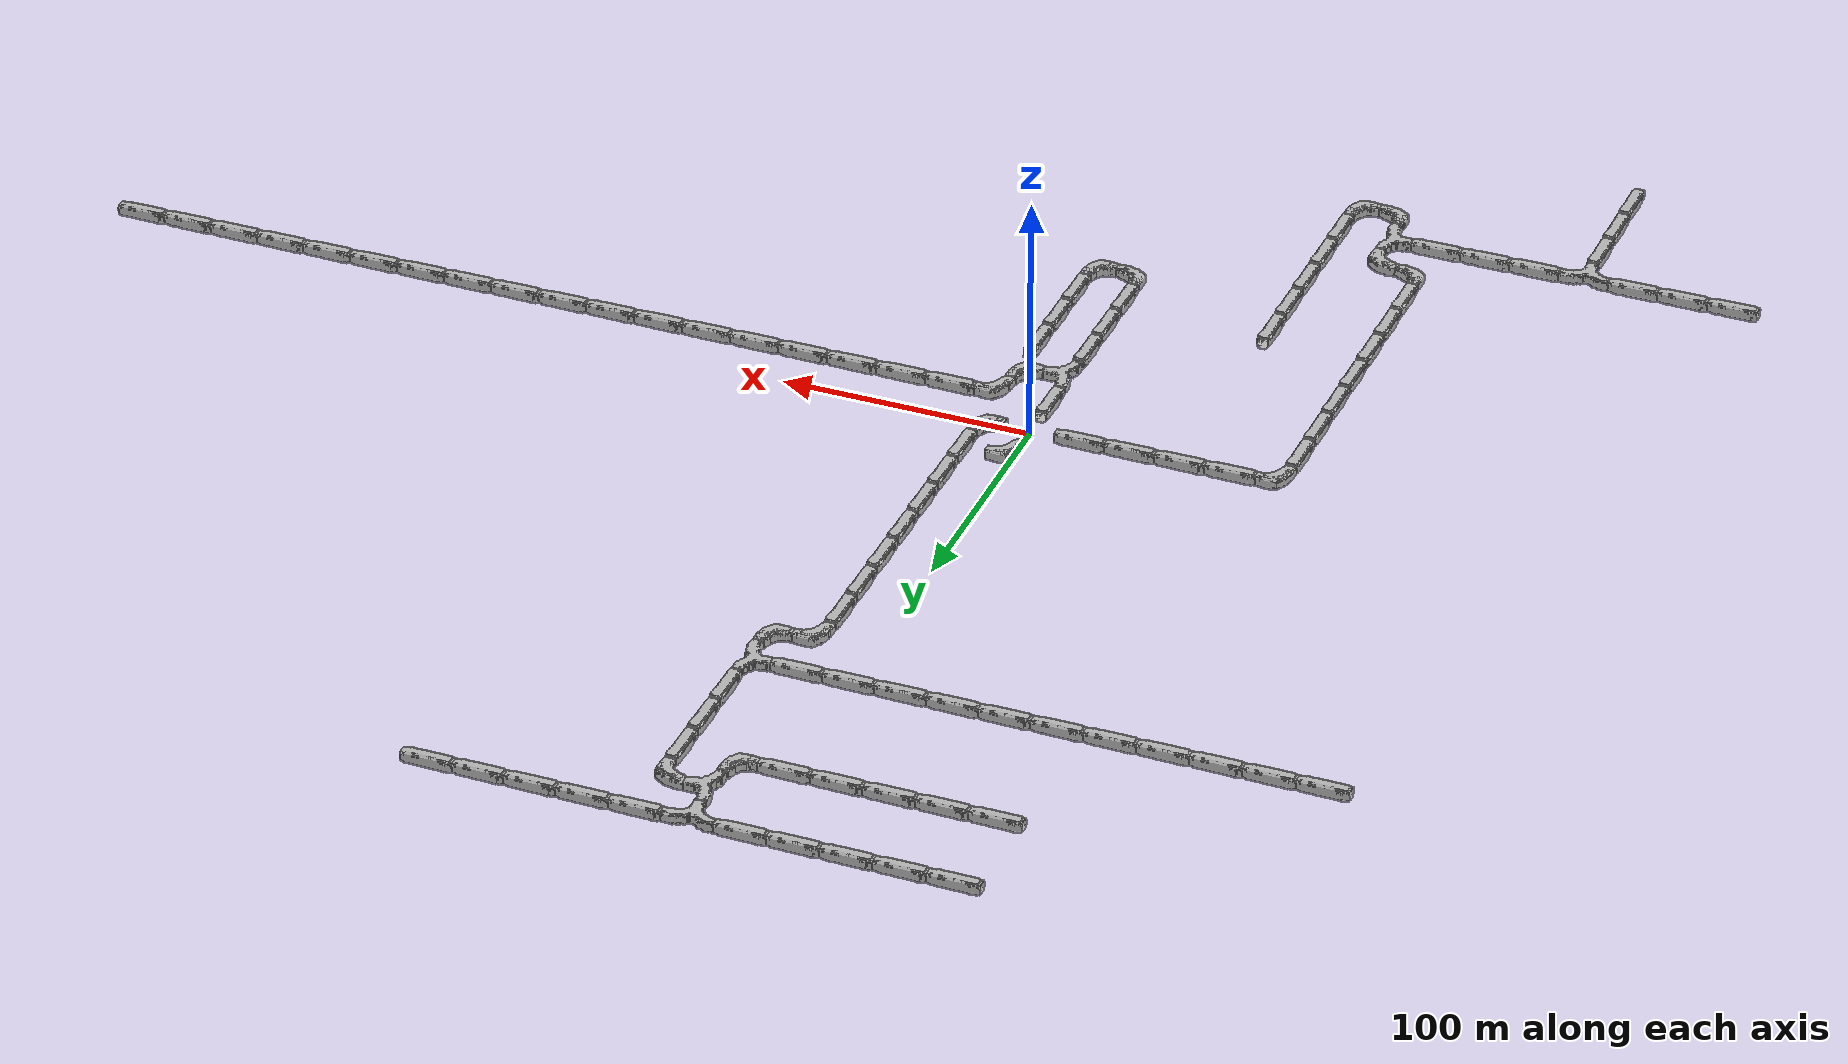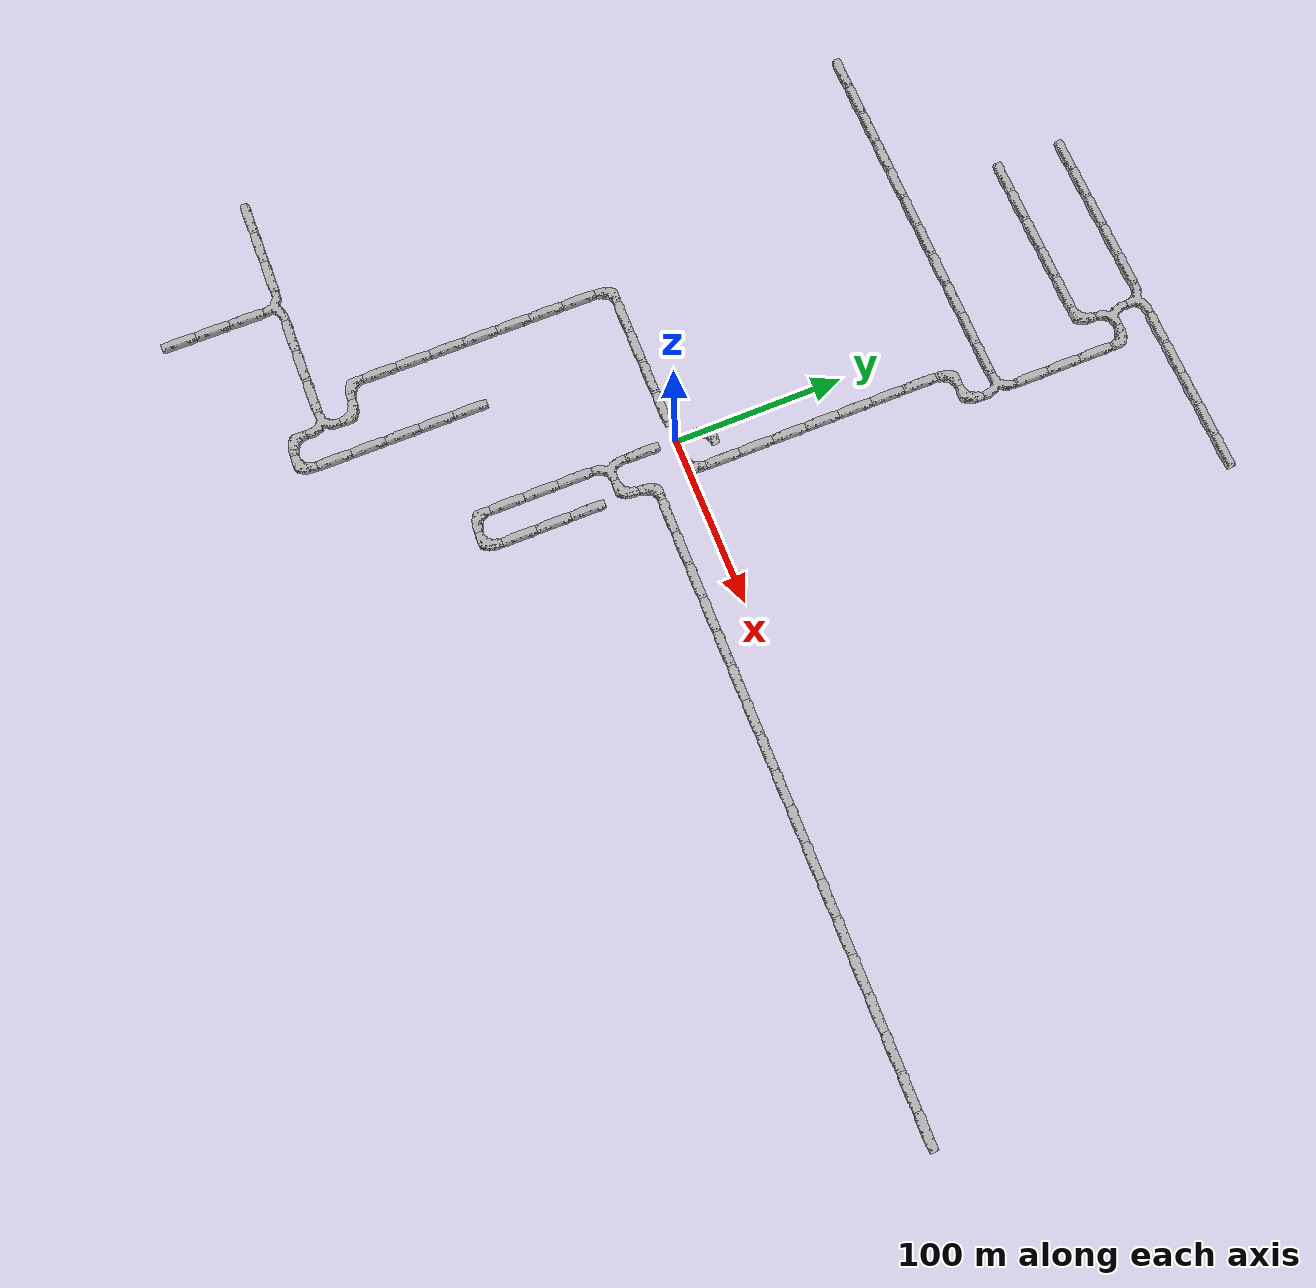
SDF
<sdf version="1.6">
 <world name="cave_2000_64">
  <include>
   <static>true</static>
   <name>cave_1_0</name>
   <pose>20 0 0 0 0 1.5707963267948966</pose>
   <uri>model://cave_L_20m</uri>
  </include>
  <include>
   <static>true</static>
   <name>cave_1_1</name>
   <pose>20 20 0 0 0 0.0</pose>
   <uri>model://cave_straight_20m</uri>
  </include>
  <include>
   <static>true</static>
   <name>cave_1_2</name>
   <pose>20 40 0 0 0 0.0</pose>
   <uri>model://cave_straight_20m</uri>
  </include>
  <include>
   <static>true</static>
   <name>cave_1_3</name>
   <pose>20 60 0 0 0 0.0</pose>
   <uri>model://cave_straight_20m</uri>
  </include>
  <include>
   <static>true</static>
   <name>cave_1_4</name>
   <pose>20 80 0 0 0 0.0</pose>
   <uri>model://cave_straight_20m</uri>
  </include>
  <include>
   <static>true</static>
   <name>cave_1_5</name>
   <pose>20 100 0 0 0 0.0</pose>
   <uri>model://cave_straight_20m</uri>
  </include>
  <include>
   <static>true</static>
   <name>cave_1_6</name>
   <pose>20 120 0 0 0 0.0</pose>
   <uri>model://cave_straight_20m</uri>
  </include>
  <include>
   <static>true</static>
   <name>cave_1_7</name>
   <pose>20 140 0 0 0 0.0</pose>
   <uri>model://cave_straight_20m</uri>
  </include>
  <include>
   <static>true</static>
   <name>cave_1_8</name>
   <pose>20 160 0 0 0 -1.5707963267948966</pose>
   <uri>model://cave_L_20m</uri>
  </include>
  <include>
   <static>true</static>
   <name>cave_2_8</name>
   <pose>40 160 0 0 0 1.5707963267948966</pose>
   <uri>model://cave_L_20m</uri>
  </include>
  <include>
   <static>true</static>
   <name>cave_2_9</name>
   <pose>40 180 0 0 0 1.5707963267948966</pose>
   <uri>model://cave_3way_20m</uri>
  </include>
  <include>
   <static>true</static>
   <name>cave_1_9</name>
   <pose>20 180 0 0 0 1.5707963267948966</pose>
   <uri>model://cave_straight_20m</uri>
  </include>
  <include>
   <static>true</static>
   <name>cave_0_9</name>
   <pose>0 180 0 0 0 1.5707963267948966</pose>
   <uri>model://cave_straight_20m</uri>
  </include>
  <include>
   <static>true</static>
   <name>cave_-1_9</name>
   <pose>-20 180 0 0 0 1.5707963267948966</pose>
   <uri>model://cave_straight_20m</uri>
  </include>
  <include>
   <static>true</static>
   <name>cave_-2_9</name>
   <pose>-40 180 0 0 0 1.5707963267948966</pose>
   <uri>model://cave_straight_20m</uri>
  </include>
  <include>
   <static>true</static>
   <name>cave_-3_9</name>
   <pose>-60 180 0 0 0 1.5707963267948966</pose>
   <uri>model://cave_straight_20m</uri>
  </include>
  <include>
   <static>true</static>
   <name>cave_-4_9</name>
   <pose>-80 180 0 0 0 1.5707963267948966</pose>
   <uri>model://cave_straight_20m</uri>
  </include>
  <include>
   <static>true</static>
   <name>cave_-5_9</name>
   <pose>-100 180 0 0 0 1.5707963267948966</pose>
   <uri>model://cave_straight_20m</uri>
  </include>
  <include>
   <static>true</static>
   <name>cave_-6_9</name>
   <pose>-120 180 0 0 0 1.5707963267948966</pose>
   <uri>model://cave_straight_20m</uri>
  </include>
  <include>
   <static>true</static>
   <name>cave_-7_9</name>
   <pose>-140 180 0 0 0 1.5707963267948966</pose>
   <uri>model://cave_straight_20m</uri>
  </include>
  <include>
   <static>true</static>
   <name>cave_-8_9</name>
   <pose>-160 180 0 0 0 1.5707963267948966</pose>
   <uri>model://cave_straight_20m</uri>
  </include>
  <include>
   <static>true</static>
   <name>cave_-9_9</name>
   <pose>-180 180 0 0 0 1.5707963267948966</pose>
   <uri>model://cave_straight_20m</uri>
  </include>
  <include>
   <static>true</static>
   <name>cave_2_10</name>
   <pose>40 200 0 0 0 0.0</pose>
   <uri>model://cave_straight_20m</uri>
  </include>
  <include>
   <static>true</static>
   <name>cave_2_11</name>
   <pose>40 220 0 0 0 0.0</pose>
   <uri>model://cave_straight_20m</uri>
  </include>
  <include>
   <static>true</static>
   <name>cave_2_12</name>
   <pose>40 240 0 0 0 0.0</pose>
   <uri>model://cave_straight_20m</uri>
  </include>
  <include>
   <static>true</static>
   <name>cave_2_13</name>
   <pose>40 260 0 0 0 3.141592653589793</pose>
   <uri>model://cave_L_20m</uri>
  </include>
  <include>
   <static>true</static>
   <name>cave_1_13</name>
   <pose>20 260 0 0 0 -1.5707963267948966</pose>
   <uri>model://cave_3way_20m</uri>
  </include>
  <include>
   <static>true</static>
   <name>cave_1_12</name>
   <pose>20 240 0 0 0 1.5707963267948966</pose>
   <uri>model://cave_L_20m</uri>
  </include>
  <include>
   <static>true</static>
   <name>cave_0_12</name>
   <pose>0 240 0 0 0 1.5707963267948966</pose>
   <uri>model://cave_straight_20m</uri>
  </include>
  <include>
   <static>true</static>
   <name>cave_-1_12</name>
   <pose>-20 240 0 0 0 1.5707963267948966</pose>
   <uri>model://cave_straight_20m</uri>
  </include>
  <include>
   <static>true</static>
   <name>cave_-2_12</name>
   <pose>-40 240 0 0 0 1.5707963267948966</pose>
   <uri>model://cave_straight_20m</uri>
  </include>
  <include>
   <static>true</static>
   <name>cave_-3_12</name>
   <pose>-60 240 0 0 0 1.5707963267948966</pose>
   <uri>model://cave_straight_20m</uri>
  </include>
  <include>
   <static>true</static>
   <name>cave_-4_12</name>
   <pose>-80 240 0 0 0 1.5707963267948966</pose>
   <uri>model://cave_straight_20m</uri>
  </include>
  <include>
   <static>true</static>
   <name>cave_1_14</name>
   <pose>20 280 0 0 0 3.141592653589793</pose>
   <uri>model://cave_3way_20m</uri>
  </include>
  <include>
   <static>true</static>
   <name>cave_2_14</name>
   <pose>40 280 0 0 0 1.5707963267948966</pose>
   <uri>model://cave_straight_20m</uri>
  </include>
  <include>
   <static>true</static>
   <name>cave_3_14</name>
   <pose>60 280 0 0 0 1.5707963267948966</pose>
   <uri>model://cave_straight_20m</uri>
  </include>
  <include>
   <static>true</static>
   <name>cave_4_14</name>
   <pose>80 280 0 0 0 1.5707963267948966</pose>
   <uri>model://cave_straight_20m</uri>
  </include>
  <include>
   <static>true</static>
   <name>cave_5_14</name>
   <pose>100 280 0 0 0 1.5707963267948966</pose>
   <uri>model://cave_straight_20m</uri>
  </include>
  <include>
   <static>true</static>
   <name>cave_6_14</name>
   <pose>120 280 0 0 0 1.5707963267948966</pose>
   <uri>model://cave_straight_20m</uri>
  </include>
  <include>
   <static>true</static>
   <name>cave_0_14</name>
   <pose>0 280 0 0 0 1.5707963267948966</pose>
   <uri>model://cave_straight_20m</uri>
  </include>
  <include>
   <static>true</static>
   <name>cave_-1_14</name>
   <pose>-20 280 0 0 0 1.5707963267948966</pose>
   <uri>model://cave_straight_20m</uri>
  </include>
  <include>
   <static>true</static>
   <name>cave_-2_14</name>
   <pose>-40 280 0 0 0 1.5707963267948966</pose>
   <uri>model://cave_straight_20m</uri>
  </include>
  <include>
   <static>true</static>
   <name>cave_-3_14</name>
   <pose>-60 280 0 0 0 1.5707963267948966</pose>
   <uri>model://cave_straight_20m</uri>
  </include>
  <include>
   <static>true</static>
   <name>cave_-4_14</name>
   <pose>-80 280 0 0 0 1.5707963267948966</pose>
   <uri>model://cave_straight_20m</uri>
  </include>
  <include>
   <static>true</static>
   <name>cave_0_-1</name>
   <pose>0 -20 0 0 0 0.0</pose>
   <uri>model://cave_straight_20m</uri>
  </include>
  <include>
   <static>true</static>
   <name>cave_0_-2</name>
   <pose>0 -40 0 0 0 -1.5707963267948966</pose>
   <uri>model://cave_3way_20m</uri>
  </include>
  <include>
   <static>true</static>
   <name>cave_1_-2</name>
   <pose>20 -40 0 0 0 1.5707963267948966</pose>
   <uri>model://cave_L_20m</uri>
  </include>
  <include>
   <static>true</static>
   <name>cave_1_-1</name>
   <pose>20 -20 0 0 0 -1.5707963267948966</pose>
   <uri>model://cave_L_20m</uri>
  </include>
  <include>
   <static>true</static>
   <name>cave_2_-1</name>
   <pose>40 -20 0 0 0 1.5707963267948966</pose>
   <uri>model://cave_straight_20m</uri>
  </include>
  <include>
   <static>true</static>
   <name>cave_3_-1</name>
   <pose>60 -20 0 0 0 1.5707963267948966</pose>
   <uri>model://cave_straight_20m</uri>
  </include>
  <include>
   <static>true</static>
   <name>cave_4_-1</name>
   <pose>80 -20 0 0 0 1.5707963267948966</pose>
   <uri>model://cave_straight_20m</uri>
  </include>
  <include>
   <static>true</static>
   <name>cave_5_-1</name>
   <pose>100 -20 0 0 0 1.5707963267948966</pose>
   <uri>model://cave_straight_20m</uri>
  </include>
  <include>
   <static>true</static>
   <name>cave_6_-1</name>
   <pose>120 -20 0 0 0 1.5707963267948966</pose>
   <uri>model://cave_straight_20m</uri>
  </include>
  <include>
   <static>true</static>
   <name>cave_7_-1</name>
   <pose>140 -20 0 0 0 1.5707963267948966</pose>
   <uri>model://cave_straight_20m</uri>
  </include>
  <include>
   <static>true</static>
   <name>cave_8_-1</name>
   <pose>160 -20 0 0 0 1.5707963267948966</pose>
   <uri>model://cave_straight_20m</uri>
  </include>
  <include>
   <static>true</static>
   <name>cave_9_-1</name>
   <pose>180 -20 0 0 0 1.5707963267948966</pose>
   <uri>model://cave_straight_20m</uri>
  </include>
  <include>
   <static>true</static>
   <name>cave_10_-1</name>
   <pose>200 -20 0 0 0 1.5707963267948966</pose>
   <uri>model://cave_straight_20m</uri>
  </include>
  <include>
   <static>true</static>
   <name>cave_11_-1</name>
   <pose>220 -20 0 0 0 1.5707963267948966</pose>
   <uri>model://cave_straight_20m</uri>
  </include>
  <include>
   <static>true</static>
   <name>cave_12_-1</name>
   <pose>240 -20 0 0 0 1.5707963267948966</pose>
   <uri>model://cave_straight_20m</uri>
  </include>
  <include>
   <static>true</static>
   <name>cave_13_-1</name>
   <pose>260 -20 0 0 0 1.5707963267948966</pose>
   <uri>model://cave_straight_20m</uri>
  </include>
  <include>
   <static>true</static>
   <name>cave_14_-1</name>
   <pose>280 -20 0 0 0 1.5707963267948966</pose>
   <uri>model://cave_straight_20m</uri>
  </include>
  <include>
   <static>true</static>
   <name>cave_15_-1</name>
   <pose>300 -20 0 0 0 1.5707963267948966</pose>
   <uri>model://cave_straight_20m</uri>
  </include>
  <include>
   <static>true</static>
   <name>cave_16_-1</name>
   <pose>320 -20 0 0 0 1.5707963267948966</pose>
   <uri>model://cave_straight_20m</uri>
  </include>
  <include>
   <static>true</static>
   <name>cave_17_-1</name>
   <pose>340 -20 0 0 0 1.5707963267948966</pose>
   <uri>model://cave_straight_20m</uri>
  </include>
  <include>
   <static>true</static>
   <name>cave_18_-1</name>
   <pose>360 -20 0 0 0 1.5707963267948966</pose>
   <uri>model://cave_straight_20m</uri>
  </include>
  <include>
   <static>true</static>
   <name>cave_19_-1</name>
   <pose>380 -20 0 0 0 1.5707963267948966</pose>
   <uri>model://cave_straight_20m</uri>
  </include>
  <include>
   <static>true</static>
   <name>cave_0_-3</name>
   <pose>0 -60 0 0 0 0.0</pose>
   <uri>model://cave_straight_20m</uri>
  </include>
  <include>
   <static>true</static>
   <name>cave_0_-4</name>
   <pose>0 -80 0 0 0 0.0</pose>
   <uri>model://cave_straight_20m</uri>
  </include>
  <include>
   <static>true</static>
   <name>cave_0_-5</name>
   <pose>0 -100 0 0 0 0.0</pose>
   <uri>model://cave_straight_20m</uri>
  </include>
  <include>
   <static>true</static>
   <name>cave_0_-6</name>
   <pose>0 -120 0 0 0 0.0</pose>
   <uri>model://cave_L_20m</uri>
  </include>
  <include>
   <static>true</static>
   <name>cave_1_-6</name>
   <pose>20 -120 0 0 0 1.5707963267948966</pose>
   <uri>model://cave_L_20m</uri>
  </include>
  <include>
   <static>true</static>
   <name>cave_1_-5</name>
   <pose>20 -100 0 0 0 0.0</pose>
   <uri>model://cave_straight_20m</uri>
  </include>
  <include>
   <static>true</static>
   <name>cave_1_-4</name>
   <pose>20 -80 0 0 0 0.0</pose>
   <uri>model://cave_straight_20m</uri>
  </include>
  <include>
   <static>true</static>
   <name>cave_1_-3</name>
   <pose>20 -60 0 0 0 0.0</pose>
   <uri>model://cave_straight_20m</uri>
  </include>
  <include>
   <static>true</static>
   <name>cave_-1_0</name>
   <pose>-20 0 0 0 0 1.5707963267948966</pose>
   <uri>model://cave_straight_20m</uri>
  </include>
  <include>
   <static>true</static>
   <name>cave_-2_0</name>
   <pose>-40 0 0 0 0 1.5707963267948966</pose>
   <uri>model://cave_straight_20m</uri>
  </include>
  <include>
   <static>true</static>
   <name>cave_-3_0</name>
   <pose>-60 0 0 0 0 1.5707963267948966</pose>
   <uri>model://cave_straight_20m</uri>
  </include>
  <include>
   <static>true</static>
   <name>cave_-4_0</name>
   <pose>-80 0 0 0 0 1.5707963267948966</pose>
   <uri>model://cave_straight_20m</uri>
  </include>
  <include>
   <static>true</static>
   <name>cave_-5_0</name>
   <pose>-100 0 0 0 0 -1.5707963267948966</pose>
   <uri>model://cave_L_20m</uri>
  </include>
  <include>
   <static>true</static>
   <name>cave_-5_-1</name>
   <pose>-100 -20 0 0 0 0.0</pose>
   <uri>model://cave_straight_20m</uri>
  </include>
  <include>
   <static>true</static>
   <name>cave_-5_-2</name>
   <pose>-100 -40 0 0 0 0.0</pose>
   <uri>model://cave_straight_20m</uri>
  </include>
  <include>
   <static>true</static>
   <name>cave_-5_-3</name>
   <pose>-100 -60 0 0 0 0.0</pose>
   <uri>model://cave_straight_20m</uri>
  </include>
  <include>
   <static>true</static>
   <name>cave_-5_-4</name>
   <pose>-100 -80 0 0 0 0.0</pose>
   <uri>model://cave_straight_20m</uri>
  </include>
  <include>
   <static>true</static>
   <name>cave_-5_-5</name>
   <pose>-100 -100 0 0 0 0.0</pose>
   <uri>model://cave_straight_20m</uri>
  </include>
  <include>
   <static>true</static>
   <name>cave_-5_-6</name>
   <pose>-100 -120 0 0 0 0.0</pose>
   <uri>model://cave_straight_20m</uri>
  </include>
  <include>
   <static>true</static>
   <name>cave_-5_-7</name>
   <pose>-100 -140 0 0 0 0.0</pose>
   <uri>model://cave_straight_20m</uri>
  </include>
  <include>
   <static>true</static>
   <name>cave_-5_-8</name>
   <pose>-100 -160 0 0 0 0.0</pose>
   <uri>model://cave_L_20m</uri>
  </include>
  <include>
   <static>true</static>
   <name>cave_-4_-8</name>
   <pose>-80 -160 0 0 0 3.141592653589793</pose>
   <uri>model://cave_L_20m</uri>
  </include>
  <include>
   <static>true</static>
   <name>cave_-4_-9</name>
   <pose>-80 -180 0 0 0 1.5707963267948966</pose>
   <uri>model://cave_3way_20m</uri>
  </include>
  <include>
   <static>true</static>
   <name>cave_-4_-10</name>
   <pose>-80 -200 0 0 0 0.0</pose>
   <uri>model://cave_L_20m</uri>
  </include>
  <include>
   <static>true</static>
   <name>cave_-3_-10</name>
   <pose>-60 -200 0 0 0 1.5707963267948966</pose>
   <uri>model://cave_L_20m</uri>
  </include>
  <include>
   <static>true</static>
   <name>cave_-3_-9</name>
   <pose>-60 -180 0 0 0 0.0</pose>
   <uri>model://cave_straight_20m</uri>
  </include>
  <include>
   <static>true</static>
   <name>cave_-3_-8</name>
   <pose>-60 -160 0 0 0 0.0</pose>
   <uri>model://cave_straight_20m</uri>
  </include>
  <include>
   <static>true</static>
   <name>cave_-3_-7</name>
   <pose>-60 -140 0 0 0 0.0</pose>
   <uri>model://cave_straight_20m</uri>
  </include>
  <include>
   <static>true</static>
   <name>cave_-3_-6</name>
   <pose>-60 -120 0 0 0 0.0</pose>
   <uri>model://cave_straight_20m</uri>
  </include>
  <include>
   <static>true</static>
   <name>cave_-3_-5</name>
   <pose>-60 -100 0 0 0 0.0</pose>
   <uri>model://cave_straight_20m</uri>
  </include>
  <include>
   <static>true</static>
   <name>cave_-5_-9</name>
   <pose>-100 -180 0 0 0 1.5707963267948966</pose>
   <uri>model://cave_straight_20m</uri>
  </include>
  <include>
   <static>true</static>
   <name>cave_-6_-9</name>
   <pose>-120 -180 0 0 0 1.5707963267948966</pose>
   <uri>model://cave_straight_20m</uri>
  </include>
  <include>
   <static>true</static>
   <name>cave_-7_-9</name>
   <pose>-140 -180 0 0 0 1.5707963267948966</pose>
   <uri>model://cave_straight_20m</uri>
  </include>
  <include>
   <static>true</static>
   <name>cave_-8_-9</name>
   <pose>-160 -180 0 0 0 3.141592653589793</pose>
   <uri>model://cave_3way_20m</uri>
  </include>
  <include>
   <static>true</static>
   <name>cave_-8_-10</name>
   <pose>-160 -200 0 0 0 0.0</pose>
   <uri>model://cave_straight_20m</uri>
  </include>
  <include>
   <static>true</static>
   <name>cave_-8_-11</name>
   <pose>-160 -220 0 0 0 0.0</pose>
   <uri>model://cave_straight_20m</uri>
  </include>
  <include>
   <static>true</static>
   <name>cave_-8_-12</name>
   <pose>-160 -240 0 0 0 0.0</pose>
   <uri>model://cave_straight_20m</uri>
  </include>
  <include>
   <static>true</static>
   <name>cave_-9_-9</name>
   <pose>-180 -180 0 0 0 1.5707963267948966</pose>
   <uri>model://cave_straight_20m</uri>
  </include>
  <include>
   <static>true</static>
   <name>cave_-10_-9</name>
   <pose>-200 -180 0 0 0 1.5707963267948966</pose>
   <uri>model://cave_straight_20m</uri>
  </include>
  <include>
   <static>true</static>
   <name>cave_-11_-9</name>
   <pose>-220 -180 0 0 0 1.5707963267948966</pose>
   <uri>model://cave_straight_20m</uri>
  </include>
  <include>
   <static>true</static>
   <name>cave_0_1</name>
   <pose>0 20 0 0 0 -1.5707963267948966</pose>
   <uri>model://cave_L_20m</uri>
  </include>
 </world>
</sdf>

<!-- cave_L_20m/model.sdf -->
<sdf version="1.6">
  <model name="cave_L_20m">
    <static>true</static>
    <link name="base">
      <pose>0 0 0 0 0 0</pose>
      <collision name="base_collision">
        <pose>0 0 0 0 0 0</pose>
        <geometry>
          <mesh>
            <uri>model://cave_L_20m/meshes/cave_L_20m.dae</uri>
          </mesh>
        </geometry>
        <surface>
          <contact>
             <collide_bitmask>0xffff</collide_bitmask>
          </contact>
          <friction>
            <ode>
              <mu>100</mu>
              <mu2>50</mu2>
            </ode>
          </friction>
        </surface>
      </collision>
      <visual name="base_visual">
        <pose>0 0 0 0 0 0</pose>
        <cast_shadows>false</cast_shadows>
        <geometry>
          <mesh>
            <uri>model://cave_L_20m/meshes/cave_L_20m.dae</uri>
          </mesh>
        </geometry>
      </visual>
    </link>
  </model>
</sdf>

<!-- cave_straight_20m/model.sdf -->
<sdf version="1.6">
  <model name="cave_straight_20m">
    <static>true</static>
    <link name="base">
      <pose>0 0 0 0 0 0</pose>
      <collision name="base_collision">
        <pose>0 0 0 0 0 0</pose>
        <geometry>
          <mesh>
            <uri>model://cave_straight_20m/meshes/cave_straight_20m.dae</uri>
          </mesh>
        </geometry>
        <surface>
          <contact>
             <collide_bitmask>0xffff</collide_bitmask>
          </contact>
          <friction>
            <ode>
              <mu>100</mu>
              <mu2>50</mu2>
            </ode>
          </friction>
        </surface>
      </collision>
      <visual name="base_visual">
        <pose>0 0 0 0 0 0</pose>
        <cast_shadows>false</cast_shadows>
        <geometry>
          <mesh>
            <uri>model://cave_straight_20m/meshes/cave_straight_20m.dae</uri>
          </mesh>
        </geometry>
      </visual>
    </link>
  </model>
</sdf>

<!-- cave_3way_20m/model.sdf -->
<sdf version="1.6">
  <model name="cave_3way_20m">
    <static>true</static>
    <link name="base">
      <pose>0 0 0 0 0 0</pose>
      <collision name="base_collision">
        <pose>0 0 0 0 0 0</pose>
        <geometry>
          <mesh>
            <uri>model://cave_3way_20m/meshes/cave_3way_20m.dae</uri>
          </mesh>
        </geometry>
        <surface>
          <contact>
             <collide_bitmask>0xffff</collide_bitmask>
          </contact>
          <friction>
            <ode>
              <mu>100</mu>
              <mu2>50</mu2>
            </ode>
          </friction>
        </surface>
      </collision>
      <visual name="base_visual">
        <cast_shadows>false</cast_shadows>
        <pose>0 0 0 0 0 0</pose>
        <geometry>
          <mesh>
            <uri>model://cave_3way_20m/meshes/cave_3way_20m.dae</uri>
          </mesh>
        </geometry>
      </visual>
    </link>
  </model>
</sdf>
